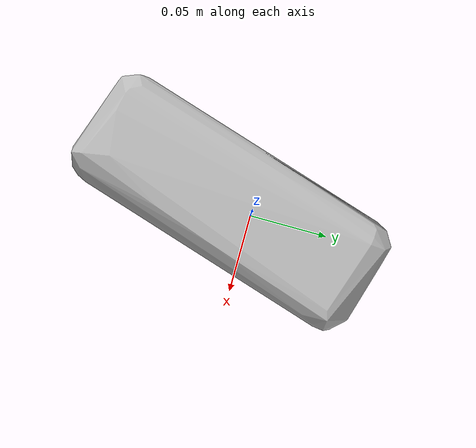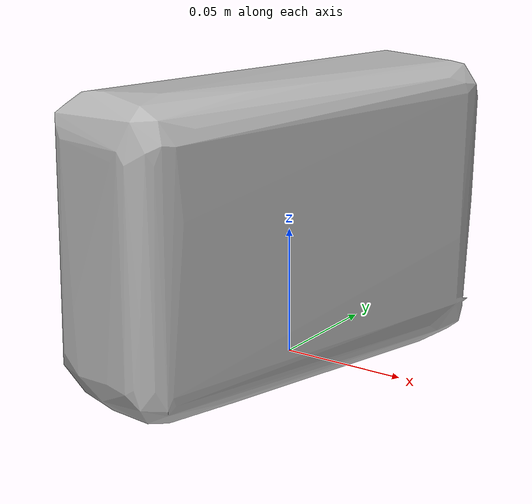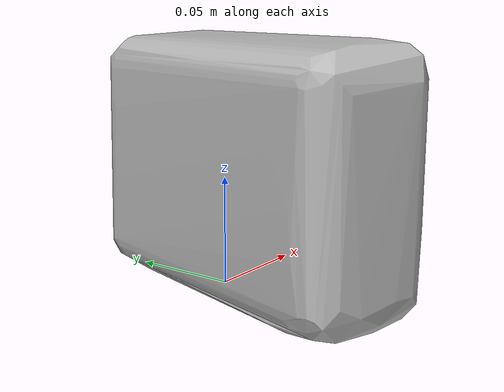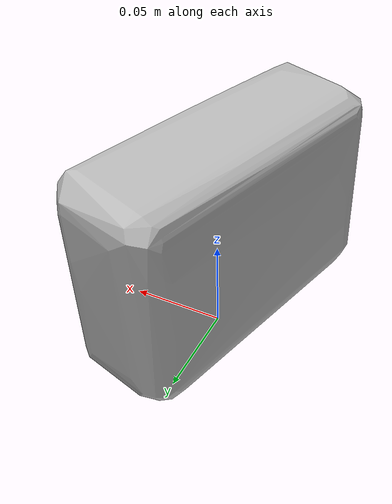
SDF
<?xml version='1.0'?>
<sdf version="1.4">
  <model name="pop_secret_light_butter">
    <static>false</static>
    <link name="link">
      <inertial>
        <pose>0.002695763091184393 -0.011850956000340598 0.05676678866019106 1.5702038758485677 -0.03575796672777236 2.8473622900313296</pose>
        <mass>0.05398798209971976</mass>
        <inertia>
          <ixx>0.0003512641958073912</ixx>
          <ixy>-2.6269356999272502e-21</ixy>
          <ixz>4.147869080566007e-21</ixz>
          <iyy>0.0002890213058607336</iyy>
          <iyz>1.311950635242777e-21</iyz>
          <izz>0.00014526700515481882</izz>
        </inertia>
      </inertial>
      <collision name="collision">
        <geometry>
          <mesh>
            <!-- Use a downsampled mesh for collisions -->
            <uri>model:///pop_secret_light_butter/pop_secret_light_butter_250_collision.obj</uri>
	        </mesh>
        </geometry>
        <surface>
      </surface>
      </collision>
      <visual name="visual">
        <geometry>
          <mesh>
            <uri>model:///pop_secret_light_butter/optimized_tsdf_texture_mapped_mesh.obj</uri>
	        </mesh>
        </geometry>
        <material>
          <script>
            <uri>model:///pop_secret_light_butter/pop_secret_light_butter.material</uri>
            <name>pop_secret_light_butter</name>
          </script>
        </material>
      </visual>
    </link>
  </model>
</sdf>
